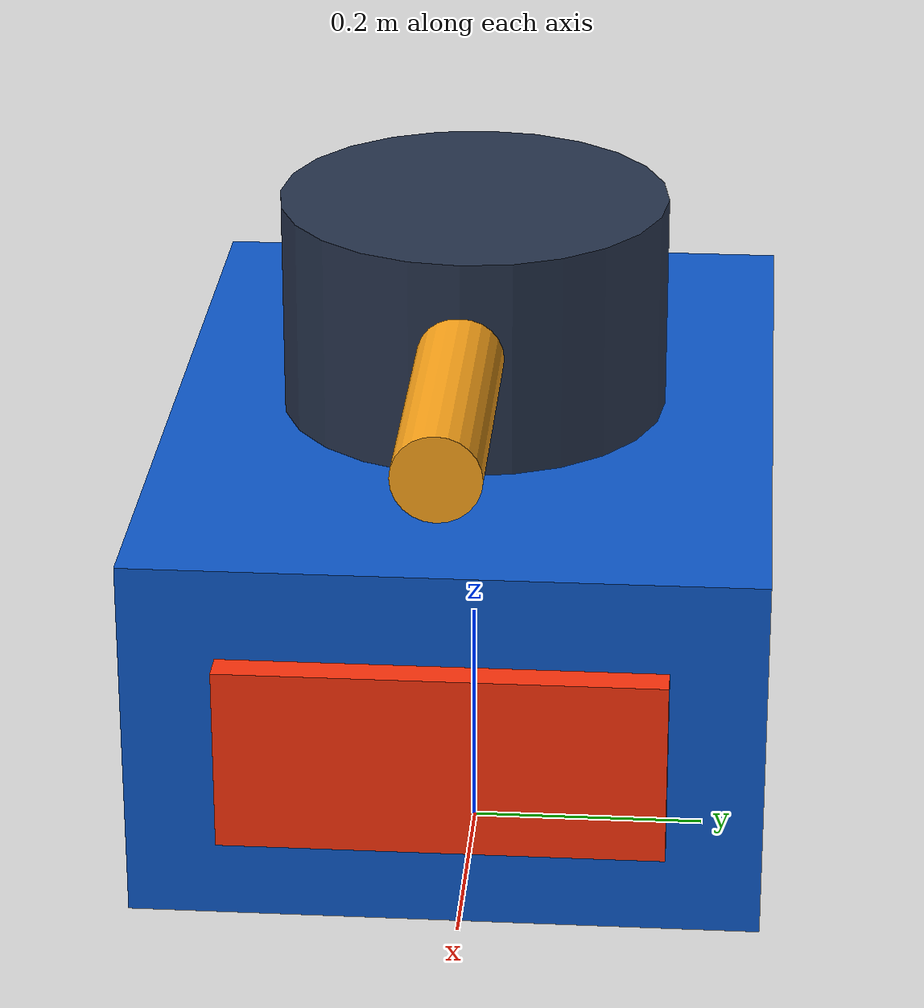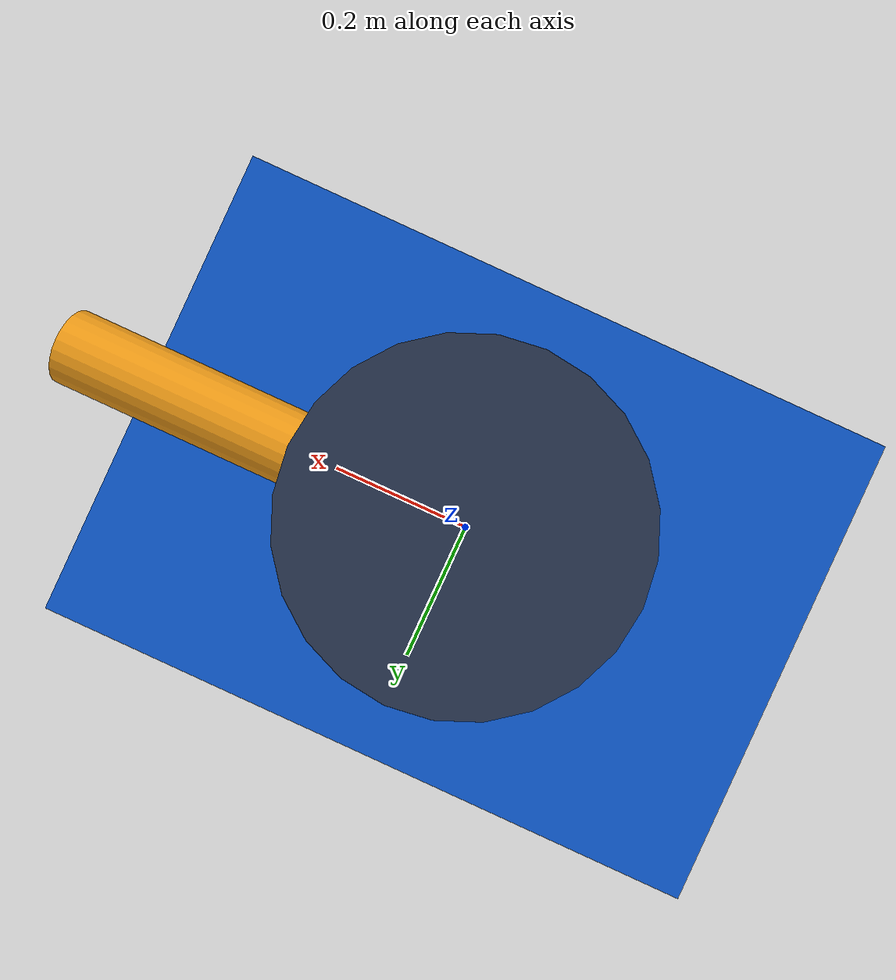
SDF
<?xml version='1.0' encoding='utf-8'?>
<sdf version="1.8">
  <!--Generated by lidar_assets.py: stage-one model with a real 360x4, 5 Hz lidar.-->
  <model name="sentry">
    <pose>0 0 0 0 0 0</pose>
    <link name="base_link">
      <gravity>false</gravity>
      <inertial>
        <mass>10</mass>
        <inertia>
          <ixx>1</ixx>
          <iyy>1</iyy>
          <izz>1</izz>
        </inertia>
      </inertial>
      <visual name="body">
        <pose>0 0 0.25 0 0 0</pose>
        <geometry>
          <box>
            <size>0.7 0.5 0.3</size>
          </box>
        </geometry>
        <material>
          <ambient>0.05 0.3 0.65 1</ambient>
          <diffuse>0.05 0.35 0.8 1</diffuse>
        </material>
      </visual>
      <visual name="front">
        <pose>0.36 0 0.25 0 0 0</pose>
        <geometry>
          <box>
            <size>0.03 0.35 0.15</size>
          </box>
        </geometry>
        <material>
          <ambient>1 0.2 0.05 1</ambient>
          <diffuse>1 0.2 0.05 1</diffuse>
        </material>
      </visual>
      <visual name="turret">
        <pose>0 0 0.49 0 0 0</pose>
        <geometry>
          <cylinder>
            <radius>0.16</radius>
            <length>0.18</length>
          </cylinder>
        </geometry>
        <material>
          <ambient>0.1 0.14 0.2 1</ambient>
          <diffuse>0.15 0.2 0.3 1</diffuse>
        </material>
      </visual>
      <visual name="front_pointer">
        <pose>0.24 0 0.5 0 1.5707963 0</pose>
        <geometry>
          <cylinder>
            <radius>0.035</radius>
            <length>0.3</length>
          </cylinder>
        </geometry>
        <material>
          <ambient>1 0.65 0.1 1</ambient>
          <diffuse>1 0.65 0.1 1</diffuse>
        </material>
      </visual>
      <sensor name="lidar_sensor" type="gpu_lidar">
        <pose>0 0 0.7 0 0 0</pose>
        <topic>/sentry/lidar</topic>
        <update_rate>5</update_rate>
        <always_on>true</always_on>
        <visualize>false</visualize>
        <lidar>
          <scan>
            <horizontal>
              <samples>360</samples>
              <resolution>1</resolution>
              <min_angle>-3.141592653589793</min_angle>
              <max_angle>3.141592653589793</max_angle>
            </horizontal>
            <vertical>
              <samples>4</samples>
              <resolution>1</resolution>
              <min_angle>-0.1</min_angle>
              <max_angle>0.1</max_angle>
            </vertical>
          </scan>
          <range>
            <min>0.2</min>
            <max>10</max>
            <resolution>0.01</resolution>
          </range>
        </lidar>
      </sensor>
    </link>
    <plugin filename="ignition-gazebo-velocity-control-system" name="ignition::gazebo::systems::VelocityControl">
      <topic>/model/sentry/cmd_vel</topic>
    </plugin>
    <plugin filename="libsentry_resume_guard.so" name="sentry_gazebo::ResumeGuard" />
    <plugin filename="ignition-gazebo-odometry-publisher-system" name="ignition::gazebo::systems::OdometryPublisher">
      <odom_frame>odom</odom_frame>
      <robot_base_frame>base_link</robot_base_frame>
      <dimensions>2</dimensions>
      <odom_publish_frequency>50</odom_publish_frequency>
      <odom_topic>/model/sentry/odometry</odom_topic>
    </plugin>
  </model>
</sdf>
